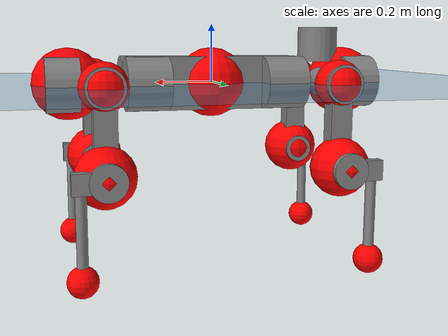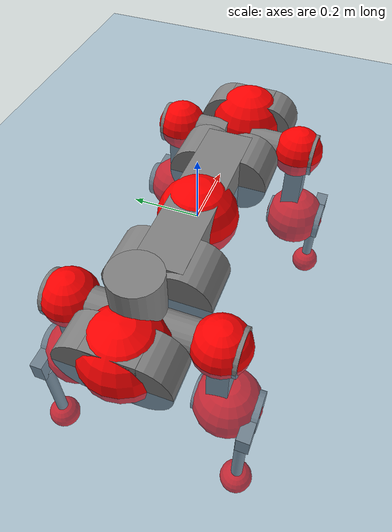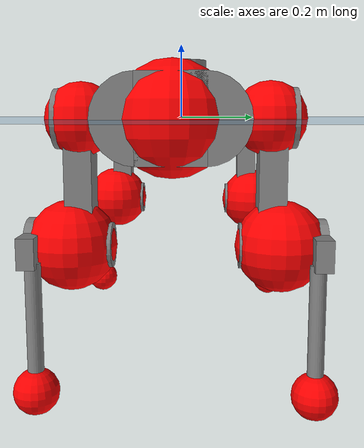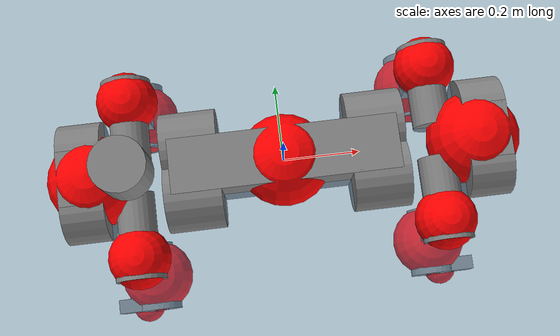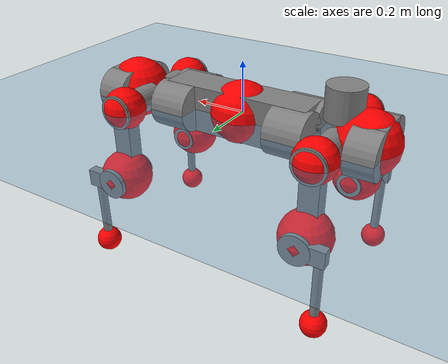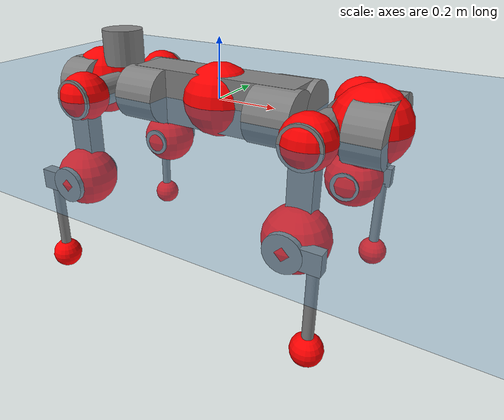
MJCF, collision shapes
<mujoco model="anymal_c">
  <compiler angle="radian" assetdir="assets" balanceinertia="true" inertiafromgeom="false"/>

  <option timestep="0.005" density="1.2" viscosity="2e-05"/>

  <size nkey="1"/>

  <visual>
    <quality shadowsize="8192"/>
    <map shadowclip="0.5"/>
  </visual>

  <default>
    <default class="/">
      <material specular="0" shininess="0.25"/>
      <geom contype="0" conaffinity="0" group="1" solref="-1000 -80"/>
      <site size="0.01 0.005 0.005" group="5"/>
      <general forcelimited="true" forcerange="-80 80" biastype="affine" gainprm="80" biasprm="0 -80 -2"/>
      <default class="anymal_c">
        <joint armature="0.01" damping="0.01" frictionloss="0.1"/>
        <default class="visual">
          <geom type="mesh" group="2"/>
          <default class="visual_zflip"/>
        </default>
        <default class="collision">
          <geom type="cylinder" group="3"/>
          <default class="foot">
            <geom size="0.03 0 0" type="sphere" condim="6" priority="1" friction="0.8 0.02 0.01" solimp="0.015 1 0.03"/>
          </default>
        </default>
      </default>
      <default class="reward_collision_sphere">
        <geom group="5" rgba="1 0 0 1"/>
      </default>
    </default>
  </default>

  <asset>
    <texture type="skybox" colorspace="auto" name="//unnamed_texture_0" builtin="gradient" rgb1="0.95 0.95 0.95" rgb2="0.95 0.95 0.95" width="100" height="600"/>
    <texture type="2d" colorspace="auto" name="texplane" builtin="checker" rgb1="0.345 0.575 0.748" rgb2="0.345 0.575 0.748" markrgb="1 1 1" width="512" height="512"/>
    <texture type="2d" colorspace="linear" name="base" file="base.png"/>
    <texture type="2d" colorspace="linear" name="top_shell" file="top_shell.png"/>
    <texture type="2d" colorspace="linear" name="bottom_shell" file="bottom_shell.png"/>
    <texture type="2d" colorspace="linear" name="remote" file="remote.png"/>
    <texture type="2d" colorspace="linear" name="hatch" file="hatch.png"/>
    <texture type="2d" colorspace="linear" name="handle" file="handle.png"/>
    <texture type="2d" colorspace="linear" name="face" file="face.png"/>
    <texture type="2d" colorspace="linear" name="battery" file="battery.png"/>
    <texture type="2d" colorspace="linear" name="lidar_cage" file="lidar_cage.png"/>
    <texture type="2d" colorspace="linear" name="depth_camera" file="depth_camera.png"/>
    <texture type="2d" colorspace="linear" name="wide_angle_camera" file="wide_angle_camera.png"/>
    <texture type="2d" colorspace="linear" name="lidar" file="lidar.png"/>
    <texture type="2d" colorspace="linear" name="drive" file="drive.png"/>
    <texture type="2d" colorspace="linear" name="hip_l" file="hip_l.png"/>
    <texture type="2d" colorspace="linear" name="shank_l" file="shank_l.png"/>
    <texture type="2d" colorspace="linear" name="foot" file="foot.png"/>
    <texture type="2d" colorspace="linear" name="thigh" file="thigh.png"/>
    <texture type="2d" colorspace="linear" name="shank_r" file="shank_r.png"/>
    <texture type="2d" colorspace="linear" name="hip_r" file="hip_r.png"/>
    <material name="MatPlane" class="/" texture="texplane" texuniform="true" texrepeat="2 2" specular="0.9" shininess="0.5"/>
    <material name="black_plastic" class="/" rgba="0.007 0.007 0.007 1"/>
    <material name="green" class="/" rgba="0.052 0.178 0.033 1"/>
    <material name="red" class="/" rgba="0.178 0.006 0.005 1"/>
    <material name="yellow" class="/" rgba="0.178 0.119 0.006 1"/>
    <material name="lwl" class="/" rgba="0.8 0.8 0.8 1"/>
    <material name="base" class="/" texture="base"/>
    <material name="top_shell" class="/" texture="top_shell"/>
    <material name="bottom_shell" class="/" texture="bottom_shell"/>
    <material name="hip_l" class="/" texture="hip_l"/>
    <material name="thigh" class="/" texture="thigh"/>
    <material name="shank_l" class="/" texture="shank_l"/>
    <material name="foot" class="/" texture="foot"/>
    <material name="hip_r" class="/" texture="hip_r"/>
    <material name="shank" class="/" texture="shank_r"/>
    <material name="hatch" class="/" texture="hatch"/>
    <material name="remote" class="/" texture="remote"/>
    <material name="handle" class="/" texture="handle"/>
    <material name="face" class="/" texture="face"/>
    <material name="depth_camera" class="/" texture="depth_camera"/>
    <material name="wide_angle_camera" class="/" texture="wide_angle_camera"/>
    <material name="battery" class="/" texture="battery"/>
    <material name="lidar_cage" class="/" texture="lidar_cage"/>
    <material name="lidar" class="/" texture="lidar"/>
    <material name="drive" class="/" texture="drive"/>
    <mesh name="base_0" class="/" file="base_0.obj"/>
    <mesh name="base_1" class="/" file="base_1.obj"/>
    <mesh name="base_2" class="/" file="base_2.obj"/>
    <mesh name="base_3" class="/" file="base_3.obj"/>
    <mesh name="base_4" class="/" file="base_4.obj"/>
    <mesh name="base_5" class="/" file="base_5.obj"/>
    <mesh name="top_shell" class="/" file="top_shell.obj"/>
    <mesh name="bottom_shell" class="/" file="bottom_shell.obj"/>
    <mesh name="remote" class="/" file="remote.obj"/>
    <mesh name="handle" class="/" file="handle.obj"/>
    <mesh name="face" class="/" file="face.obj"/>
    <mesh name="wide_angle_camera" class="/" file="wide_angle_camera.obj"/>
    <mesh name="depth_camera" class="/" file="depth_camera.obj"/>
    <mesh name="battery" class="/" file="battery.obj"/>
    <mesh name="lidar_cage" class="/" file="lidar_cage.obj"/>
    <mesh name="lidar" class="/" file="lidar.obj"/>
    <mesh name="drive" class="/" file="drive.obj"/>
    <mesh name="hip_l" class="/" file="hip_l.obj"/>
    <mesh name="thigh" class="/" file="thigh.obj"/>
    <mesh name="shank_l" class="/" file="shank_l.obj"/>
    <mesh name="foot" class="/" file="foot.obj"/>
    <mesh name="hip_r" class="/" file="hip_r.obj"/>
    <mesh name="hatch" class="/" file="hatch.obj"/>
    <mesh name="shank_r" class="/" file="shank_r.obj"/>
  </asset>

  <worldbody>
    <geom name="floor" class="/" size="100 100 0.125" type="plane" group="0" material="MatPlane"/>
    <light name="toplight_shadow" class="/" pos="0 0 5" dir="0.0990148 0.0990148 -0.990148" type="directional" ambient="0.04 0.04 0.04" diffuse="0.55 0.55 0.55" specular="0.12 0.12 0.12"/>
    <light name="toplight_fill" class="/" pos="0 0 5" dir="0.0990148 0.0990148 -0.990148" type="directional" castshadow="false" ambient="0.04 0.04 0.04" diffuse="0.3 0.3 0.3" specular="0.08 0.08 0.08"/>
    <body name="trunk" childclass="anymal_c" pos="0.00259291 -0.00022753 -0.000614397" quat="0.999999 0.000177386 -0.000804884 0.00107424">
      <inertial pos="-9.46537e-05 0.000136163 0.0493309" quat="0.501998 0.501854 0.49573 0.500392" mass="18.9972" diaginertia="1.04092 0.469472 0.196573"/>
      <joint name="//unnamed_joint_0" type="free" armature="0" damping="0" frictionloss="0"/>
      <geom name="//unnamed_geom_1" class="visual" material="green" mesh="base_0"/>
      <geom name="//unnamed_geom_2" class="visual" material="yellow" mesh="base_1"/>
      <geom name="//unnamed_geom_3" class="visual" material="red" mesh="base_2"/>
      <geom name="//unnamed_geom_4" class="visual" material="black_plastic" mesh="base_3"/>
      <geom name="//unnamed_geom_5" class="visual" material="lwl" mesh="base_4"/>
      <geom name="//unnamed_geom_6" class="visual" material="base" mesh="base_5"/>
      <geom name="trunk_1" class="collision" size="0.293462 0.0708358 0.0910746" type="box"/>
      <geom name="trunk_2" class="collision" size="0.0910746 0.0733656" pos="0.24034 0.0662977 0" quat="0.707107 0 0.707107 0"/>
      <geom name="trunk_3" class="collision" size="0.0910746 0.0733656" pos="-0.24034 0.0662977 0" quat="0.707107 0 0.707107 0"/>
      <geom name="trunk_4" class="collision" size="0.0910746 0.0733656" pos="0.24034 -0.0662977 0" quat="0.707107 0 0.707107 0"/>
      <geom name="trunk_5" class="collision" size="0.0910746 0.0733656" pos="-0.24034 -0.0662977 0" quat="0.707107 0 0.707107 0"/>
      <geom name="//unnamed_geom_12" class="visual" material="top_shell" mesh="top_shell"/>
      <geom name="//unnamed_geom_13" class="visual" material="bottom_shell" mesh="bottom_shell"/>
      <geom name="//unnamed_geom_14" class="visual" material="remote" mesh="remote"/>
      <geom name="//unnamed_geom_15" class="visual" material="handle" mesh="handle"/>
      <geom name="//unnamed_geom_16" class="visual" pos="0.458028 0 0" quat="1 0 0 0" material="face" mesh="face"/>
      <geom name="trunk_6" class="collision" size="0.0556567 0.0708358 0.0910746" pos="0.518804 0 0" type="box"/>
      <geom name="//unnamed_geom_18" class="collision" size="0.0910746 0.0556567" pos="0.518804 0.0662977 0" quat="0.707107 0 0.707107 0"/>
      <geom name="//unnamed_geom_19" class="collision" size="0.0910746 0.0556567" pos="0.518804 -0.0662977 0" quat="0.707107 0 0.707107 0"/>
      <geom name="//unnamed_geom_20" class="visual" pos="0.510124 0 -0.0278018" quat="0.965926 0 0.258819 0" material="depth_camera" mesh="depth_camera"/>
      <geom name="//unnamed_geom_21" class="visual" pos="0.566872 0 0.0147259" material="wide_angle_camera" mesh="wide_angle_camera"/>
      <geom name="//unnamed_geom_22" class="visual_zflip" pos="-0.458028 0 0" quat="0 0 0 1" material="face" mesh="face"/>
      <geom name="trunk_7" class="collision" size="0.0556567 0.0708358 0.0910746" pos="-0.518804 0 0" quat="0 0 0 1" type="box"/>
      <geom name="//unnamed_geom_24" class="collision" size="0.0910746 0.0556567" pos="-0.518804 -0.0662977 0" quat="0 -0.707107 0 0.707107"/>
      <geom name="//unnamed_geom_25" class="collision" size="0.0910746 0.0556567" pos="-0.518804 0.0662977 0" quat="0 -0.707107 0 0.707107"/>
      <geom name="//unnamed_geom_26" class="visual" pos="-0.510124 0 -0.0278018" quat="0 -0.258819 0 0.965926" material="depth_camera" mesh="depth_camera"/>
      <geom name="//unnamed_geom_27" class="visual_zflip" pos="-0.566872 0 0.0147259" quat="0 0 0 1" material="wide_angle_camera" mesh="wide_angle_camera"/>
      <geom name="//unnamed_geom_28" class="visual" material="battery" mesh="battery"/>
      <geom name="//unnamed_geom_29" class="visual" pos="0 0.070339 0.0294983" quat="0.683013 -0.183013 0.183013 0.683013" material="depth_camera" mesh="depth_camera"/>
      <geom name="//unnamed_geom_30" class="visual" pos="0 -0.070339 0.0294983" quat="0.683013 0.183013 0.183013 -0.683013" material="depth_camera" mesh="depth_camera"/>
      <geom name="//unnamed_geom_31" class="visual" pos="-0.402225 0 0.0723015" quat="1 0 0 0" material="lidar_cage" mesh="lidar_cage"/>
      <geom name="trunk_8" class="collision" size="0.0708358 0.0607164" pos="-0.402225 0 0.131323"/>
      <geom name="//unnamed_geom_33" class="visual" pos="-0.402225 -6.20358e-05 0.139881" quat="0.707107 0 0 -0.707107" material="lidar" mesh="lidar"/>
      <geom name="//unnamed_geom_34" class="visual" pos="0.331394 0.0985125 -6.31071e-10" quat="0.258819 0.965926 0 0" material="drive" mesh="drive"/>
      <geom name="//unnamed_geom_35" class="visual" pos="0.331394 -0.0985125 6.31071e-10" quat="0.258819 -0.965926 0 0" material="drive" mesh="drive"/>
      <geom name="//unnamed_geom_36" class="visual" pos="-0.331394 0.0985125 6.31071e-10" quat="0 0 0.965926 -0.258819" material="drive" mesh="drive"/>
      <geom name="//unnamed_geom_37" class="visual" pos="-0.331394 -0.0985125 -6.31071e-10" quat="0 0 -0.965926 -0.258819" material="drive" mesh="drive"/>
      <geom name="//unnamed_geom_38" class="visual" pos="0.128182 0 0.0718097" quat="1 0 0 0" material="hatch" mesh="hatch"/>
      <geom name="//unnamed_geom_39" class="reward_collision_sphere" size="0.121433"/>
      <geom name="//unnamed_geom_40" class="reward_collision_sphere" size="0.121433" pos="0.497256 0 0"/>
      <geom name="//unnamed_geom_41" class="reward_collision_sphere" size="0.121433" pos="-0.497256 0 0"/>
      <site name="imu" pos="0.274711 0.0136904 0.0590222" size="0.0101194"/>
      <camera name="track" pos="0 -1.89422 0" quat="0.707107 0.707107 0 0" mode="trackcom"/>
      <camera name="ego_camera" pos="0.497256 0 -0.0393478" quat="-0.5 -0.5 0.5 0.5"/>
      <body name="LF_HIP" pos="0.331734 0.100026 0.000122612" quat="0.258724 0.965951 -1.38715e-05 0.000112859">
        <inertial pos="0.0615762 -0.0163041 -0.0072547" quat="-0.128189 0.710464 -0.135592 0.678545" mass="2.82107" diaginertia="0.00982747 0.00374256 0.0030302"/>
        <joint name="LF_HAA" pos="0 0 0" axis="0.999886 0.00173412 0.0149986" range="-0.666108 0.501051" armature="0.00997901" damping="0.0142101" frictionloss="0.10076"/>
        <geom name="//unnamed_geom_42" class="visual" pos="0 -3.71231e-05 6.09743e-06" quat="0.258819 -0.965926 0 0" material="hip_l" mesh="hip_l"/>
        <geom name="//unnamed_geom_43" class="visual" pos="0.0661903 -0.0781376 -0.0453834" quat="0.183013 -0.683013 0.683013 0.183013" material="drive" mesh="drive"/>
        <geom name="//unnamed_geom_44" class="collision" size="0.050597 0.0708358" pos="0.0661903 -0.0113273 -0.00679241" quat="-0.353553 -0.612372 0.612372 -0.353553"/>
        <body name="LF_THIGH" pos="0.0674909 -0.0681284 -0.0399778" quat="0.182056 -0.682539 0.683637 0.183403">
          <inertial pos="0.036514 -0.0016443 -0.244379" quat="0.993185 -0.00479446 -0.080418 0.0842223" mass="3.08012" diaginertia="0.0489098 0.0221952 0.00386482"/>
          <joint name="LF_HFE" pos="0 0 0" axis="0.999999 -0.00128603 -0.00114877" range="-3.14037 3.13847" armature="0.0101234" damping="0.0113773" frictionloss="0.10331"/>
          <geom name="//unnamed_geom_45" class="visual" pos="0.00314164 4.9505e-06 0" quat="0.707107 0 0 -0.707107" material="thigh" mesh="thigh"/>
          <geom name="//unnamed_geom_46" class="collision" size="0.0657761 0.0404776" pos="0.0442005 0 0" quat="0.5 0.5 -0.5 -0.5"/>
          <geom name="//unnamed_geom_47" class="collision" size="0.0379477 0.0303582 0.143001" pos="0.0331504 0 -0.13901" quat="0.707107 0 0 -0.707107" type="box"/>
          <geom name="//unnamed_geom_48" class="visual" pos="0.110833 0 -0.280353" quat="1 0 0 0" material="drive" mesh="drive"/>
          <geom name="//unnamed_geom_49" class="collision" size="0.050597 0.0708358" pos="0.0334819 0 -0.280353" quat="0.707107 0 0.707107 0"/>
          <geom name="//unnamed_geom_50" class="reward_collision_sphere" size="0.0809552" pos="0.0276253 0 0"/>
          <body name="LF_SHANK" pos="0.110227 -0.00311153 -0.280151" quat="1 9.76391e-05 0.000467689 -0.000801021">
            <inertial pos="0.00349797 -0.0577173 -0.0774375" quat="0.992959 -0.115657 -0.00109325 -0.0255993" mass="0.608794" diaginertia="0.0169599 0.00742293 0.00105366"/>
            <joint name="LF_KFE" pos="0 0 0" axis="1 -2.85077e-05 1.43443e-05" range="-3.1945 3.14789" armature="0.0105613" damping="0" frictionloss="0.106245"/>
            <geom name="//unnamed_geom_51" class="visual" pos="0.00102442 0.00546227 0" quat="0.707107 0 0 -0.707107" material="shank_l" mesh="shank_l"/>
            <geom name="LF_kfe_act" class="collision" size="0.0607164 0.0202388" pos="0.0221003 0 0" quat="0.5 0.5 -0.5 -0.5"/>
            <geom name="//unnamed_geom_53" class="collision" size="0.0581855 0.034153 0.0192269" pos="0.0221003 -0.0544579 0" quat="0.5 0.5 -0.5 -0.5" type="box"/>
            <geom name="//unnamed_geom_54" class="visual" pos="0.0144202 -0.0815381 -0.332459" quat="0.382683 0 0 -0.92388" material="foot" mesh="foot"/>
            <geom name="LF_calf" class="collision" size="0.0177089 0.142938" pos="0.0144204 -0.0832984 -0.16623" quat="0.707107 0 0 -0.707107"/>
            <geom name="LF_foot" class="foot" size="0.0330709" pos="0.0144204 -0.0832984 -0.310326" quat="0.707107 0 0 -0.707107"/>
            <geom name="//unnamed_geom_57" class="reward_collision_sphere" size="0.101194" pos="-0.0552507 0 0"/>
            <geom name="//unnamed_geom_58" class="reward_collision_sphere" size="0.050597" pos="0.0144204 -0.0832984 -0.310326"/>
            <site name="LF_foot" class="foot" pos="0.0144204 -0.0832984 -0.310326" quat="0.707107 0 0 -0.707107" size="0.0101194"/>
          </body>
        </body>
      </body>
      <body name="RF_HIP" pos="0.330889 -0.0984546 -0.00253327" quat="0.260017 -0.965604 0.000627272 -0.000129672">
        <inertial pos="0.0637664 0.0123083 -0.00804502" quat="0.135776 0.670459 0.134681 0.716876" mass="2.84879" diaginertia="0.00922465 0.00369083 0.00291522"/>
        <joint name="RF_HAA" pos="0 0 0" axis="0.999995 -0.00280964 -0.00137867" range="-0.50332 0.724848" armature="0.00976398" damping="0.0115096" frictionloss="0.0879797"/>
        <geom name="//unnamed_geom_59" class="visual" pos="0 3.71228e-05 6.09742e-06" quat="0.258819 0.965926 0 0" material="hip_r" mesh="hip_r"/>
        <geom name="//unnamed_geom_60" class="visual" pos="0.0661903 0.0781376 -0.0453834" quat="0.183013 0.683013 0.683013 -0.183013" material="drive" mesh="drive"/>
        <geom name="//unnamed_geom_61" class="collision" size="0.050597 0.0708358" pos="0.0661903 0.0113273 -0.00679241" quat="-0.353553 0.612372 0.612372 0.353553"/>
        <body name="RF_THIGH" pos="0.0662017 0.0657858 -0.0405999" quat="0.183013 0.682964 0.683057 -0.183028">
          <inertial pos="0.0354311 -0.00241857 -0.241294" quat="0.993818 -0.00390387 -0.0751838 0.0815996" mass="3.21774" diaginertia="0.049436 0.0227333 0.00394171"/>
          <joint name="RF_HFE" pos="0 0 0" axis="1 -0.000620462 0.000225713" range="-3.12689 3.18995" armature="0.0101707" damping="0.0151007" frictionloss="0.10306"/>
          <geom name="//unnamed_geom_62" class="visual" pos="0.00314164 4.9505e-06 0" quat="0.707107 0 0 -0.707107" material="thigh" mesh="thigh"/>
          <geom name="//unnamed_geom_63" class="collision" size="0.0657761 0.0404776" pos="0.0442005 0 0" quat="0.5 0.5 0.5 0.5"/>
          <geom name="//unnamed_geom_64" class="collision" size="0.0379477 0.0303582 0.143001" pos="0.0331504 0 -0.13901" quat="0.707107 0 0 0.707107" type="box"/>
          <geom name="//unnamed_geom_65" class="visual" pos="0.110833 0 -0.280353" quat="1 0 0 0" material="drive" mesh="drive"/>
          <geom name="//unnamed_geom_66" class="collision" size="0.050597 0.0708358" pos="0.0334819 0 -0.280353" quat="0.707107 0 0.707107 0"/>
          <geom name="//unnamed_geom_67" class="reward_collision_sphere" size="0.0809552" pos="0.0276253 0 0"/>
          <body name="RF_SHANK" pos="0.110757 -0.00223032 -0.280167" quat="1 -2.95933e-05 2.05159e-05 4.66962e-07">
            <inertial pos="0.00652537 0.058398 -0.0790087" quat="0.993966 0.107433 -0.00980912 0.0198412" mass="0.605" diaginertia="0.016679 0.00704008 0.00100166"/>
            <joint name="RF_KFE" pos="0 0 0" axis="0.999962 0.0033265 0.00808131" range="-3.14204 3.17787" armature="0.0103655" damping="0.0210565" frictionloss="0.101017"/>
            <geom name="//unnamed_geom_68" class="visual" pos="0.00102442 -0.00546226 0" quat="0.707107 0 0 0.707107" material="shank" mesh="shank_r"/>
            <geom name="RF_kfe_act" class="collision" size="0.0607164 0.0202388" pos="0.0221003 0 0" quat="0.5 0.5 0.5 0.5"/>
            <geom name="//unnamed_geom_70" class="collision" size="0.0581855 0.034153 0.0192269" pos="0.0221003 0.0544579 0" quat="0.5 0.5 0.5 0.5" type="box"/>
            <geom name="//unnamed_geom_71" class="visual" pos="0.0144207 0.0815381 -0.332459" quat="0.382683 0 0 0.92388" material="foot" mesh="foot"/>
            <geom name="RF_calf" class="collision" size="0.0177089 0.142938" pos="0.0144204 0.0832984 -0.16623" quat="0.707107 0 0 0.707107"/>
            <geom name="RF_foot" class="foot" size="0.0273815" pos="0.0144204 0.0832984 -0.310326" quat="0.707107 0 0 0.707107"/>
            <geom name="//unnamed_geom_74" class="reward_collision_sphere" size="0.101194" pos="-0.0552507 0 0"/>
            <geom name="//unnamed_geom_75" class="reward_collision_sphere" size="0.050597" pos="0.0144204 0.0832984 -0.310326"/>
            <site name="RF_foot" class="foot" pos="0.0144204 0.0832984 -0.310326" quat="0.707107 0 0 0.707107" size="0.0101194"/>
          </body>
        </body>
      </body>
      <body name="LH_HIP" pos="-0.330698 0.0991052 -0.000965312" quat="6.72668e-05 0.000142483 0.965902 -0.258908">
        <inertial pos="0.0626266 0.0169328 -0.0105125" quat="0.140073 0.684611 0.13496 0.702477" mass="2.93868" diaginertia="0.00951634 0.00367636 0.00309111"/>
        <joint name="LH_HAA" pos="0 0 0" axis="1 -0.0003428 0.000286454" range="-0.477451 0.695515" armature="0.00891386" damping="0.0142274" frictionloss="0.114852"/>
        <geom name="//unnamed_geom_76" class="visual" pos="0 3.71228e-05 6.09742e-06" quat="-0.258819 -0.965926 0 0" material="hip_r" mesh="hip_r"/>
        <geom name="//unnamed_geom_77" class="visual" pos="0.0661903 0.0781376 -0.0453834" quat="0.183013 0.683013 0.683013 -0.183013" material="drive" mesh="drive"/>
        <geom name="//unnamed_geom_78" class="collision" size="0.050597 0.0708358" pos="0.0661903 0.0113273 -0.00679241" quat="-0.353553 0.612372 0.612372 0.353553"/>
        <body name="LH_THIGH" pos="0.0656418 0.0657789 -0.0396077" quat="0.183186 0.683164 0.68286 -0.182846">
          <inertial pos="0.0341223 -0.000234428 -0.242428" quat="0.992603 -0.00615551 -0.0814696 0.0897974" mass="3.2505" diaginertia="0.0495864 0.0222511 0.00389701"/>
          <joint name="LH_HFE" pos="0 0 0" axis="0.999982 0.000340656 0.00595701" stiffness="0.00564668" range="-3.13274 3.14351" armature="0.0112428" damping="0.00212486" frictionloss="0.100583"/>
          <geom name="//unnamed_geom_79" class="visual" pos="0.00314164 4.9505e-06 0" quat="0.707107 0 0 -0.707107" material="thigh" mesh="thigh"/>
          <geom name="//unnamed_geom_80" class="collision" size="0.0657761 0.0404776" pos="0.0442005 0 0" quat="0.5 0.5 -0.5 -0.5"/>
          <geom name="//unnamed_geom_81" class="collision" size="0.0379477 0.0303582 0.143001" pos="0.0331504 0 -0.13901" quat="0.707107 0 0 -0.707107" type="box"/>
          <geom name="//unnamed_geom_82" class="visual" pos="0.110833 0 -0.280353" quat="1 0 0 0" material="drive" mesh="drive"/>
          <geom name="//unnamed_geom_83" class="collision" size="0.050597 0.0708358" pos="0.0334819 0 -0.280353" quat="0.707107 0 0.707107 0"/>
          <geom name="//unnamed_geom_84" class="reward_collision_sphere" size="0.0809552" pos="0.0276253 0 0"/>
          <body name="LH_SHANK" pos="0.111317 -0.000712615 -0.282686" quat="1 -0.000266608 -0.000459283 -1.71515e-06">
            <inertial pos="0.00645386 0.0605371 -0.0790669" quat="0.993393 0.112445 0.00172557 0.0228655" mass="0.606465" diaginertia="0.0163951 0.0070309 0.000990596"/>
            <joint name="LH_KFE" pos="0 0 0" axis="0.999958 -0.00749296 0.00520333" range="-3.14549 3.14808" armature="0.0107264" damping="0" frictionloss="0.11475"/>
            <geom name="//unnamed_geom_85" class="visual" pos="0.00102442 -0.00546226 0" quat="-0.707107 0 0 -0.707107" material="shank" mesh="shank_r"/>
            <geom name="LH_kfe_act" class="collision" size="0.0607164 0.0202388" pos="0.0221003 0 0" quat="0.5 0.5 -0.5 -0.5"/>
            <geom name="//unnamed_geom_87" class="collision" size="0.0581855 0.034153 0.0192269" pos="0.0221003 0.0544579 0" quat="0.5 0.5 -0.5 -0.5" type="box"/>
            <geom name="//unnamed_geom_88" class="visual" pos="0.0144207 0.0815381 -0.332459" quat="-0.382683 0 0 -0.92388" material="foot" mesh="foot"/>
            <geom name="LH_calf" class="collision" size="0.0177089 0.142938" pos="0.0144204 0.0832984 -0.16623" quat="0.707107 0 0 -0.707107"/>
            <geom name="LH_foot" class="foot" size="0.0314302" pos="0.0144204 0.0832984 -0.310326" quat="0.707107 0 0 -0.707107"/>
            <geom name="//unnamed_geom_91" class="reward_collision_sphere" size="0.101194" pos="-0.0552507 0 0"/>
            <geom name="//unnamed_geom_92" class="reward_collision_sphere" size="0.050597" pos="0.0144204 0.0832984 -0.310326"/>
            <site name="LH_foot" class="foot" pos="0.0144204 0.0832984 -0.310326" quat="0.707107 0 0 -0.707107" size="0.0101194"/>
          </body>
        </body>
      </body>
      <body name="RH_HIP" pos="-0.33192 -0.100078 -0.00123568" quat="0.000244077 0.000339213 -0.965598 -0.26004">
        <inertial pos="0.065287 -0.0123646 -0.0110643" quat="-0.12662 0.712312 -0.144215 0.675116" mass="2.87474" diaginertia="0.00959793 0.00371714 0.00302819"/>
        <joint name="RH_HAA" pos="0 0 0" axis="0.9999 0.0129979 0.00551001" range="-0.731938 0.474026" armature="0.00975449" damping="0.0138626" frictionloss="0.0960102"/>
        <geom name="//unnamed_geom_93" class="visual" pos="0 -3.71231e-05 6.09743e-06" quat="-0.258819 0.965926 0 0" material="hip_l" mesh="hip_l"/>
        <geom name="//unnamed_geom_94" class="visual" pos="0.0661903 -0.0781376 -0.0453834" quat="-0.183013 0.683013 -0.683013 -0.183013" material="drive" mesh="drive"/>
        <geom name="//unnamed_geom_95" class="collision" size="0.050597 0.0708358" pos="0.0661903 -0.0113273 -0.00679241" quat="0.353553 0.612372 -0.612372 0.353553"/>
        <body name="RH_THIGH" pos="0.0670608 -0.070853 -0.0441365" quat="-0.183012 0.68293 -0.683117 -0.182934">
          <inertial pos="0.0346946 -0.000343047 -0.241405" quat="0.993155 -0.00517174 -0.0807502 0.0842338" mass="3.08123" diaginertia="0.0504826 0.0233315 0.00384532"/>
          <joint name="RH_HFE" pos="0 0 0" axis="0.999997 0.000197257 0.0024424" range="-3.13696 3.19797" armature="0.0102274" damping="0.00888249" frictionloss="0.0959803"/>
          <geom name="//unnamed_geom_96" class="visual" pos="0.00314164 4.9505e-06 0" quat="0.707107 0 0 -0.707107" material="thigh" mesh="thigh"/>
          <geom name="//unnamed_geom_97" class="collision" size="0.0657761 0.0404776" pos="0.0442005 0 0" quat="0.5 0.5 0.5 0.5"/>
          <geom name="//unnamed_geom_98" class="collision" size="0.0379477 0.0303582 0.143001" pos="0.0331504 0 -0.13901" quat="0.707107 0 0 0.707107" type="box"/>
          <geom name="//unnamed_geom_99" class="visual" pos="0.110833 0 -0.280353" quat="1 0 0 0" material="drive" mesh="drive"/>
          <geom name="//unnamed_geom_100" class="collision" size="0.050597 0.0708358" pos="0.0334819 0 -0.280353" quat="0.707107 0 0.707107 0"/>
          <geom name="//unnamed_geom_101" class="reward_collision_sphere" size="0.0809552" pos="0.0276253 0 0"/>
          <body name="RH_SHANK" pos="0.111732 -4.71547e-05 -0.278665" quat="1 -2.90697e-05 0.000133876 0.000239897">
            <inertial pos="0.00395994 -0.0586609 -0.0798727" quat="0.992816 -0.117848 0.00132046 -0.0206595" mass="0.608939" diaginertia="0.01673 0.00709206 0.00106485"/>
            <joint name="RH_KFE" pos="0 0 0" axis="0.999885 0.00642461 0.0137595" range="-3.11229 3.13678" armature="0.0105953" damping="0.0212789" frictionloss="0.105881"/>
            <geom name="//unnamed_geom_102" class="visual" pos="0.00102442 0.00546227 0" quat="0.707107 0 0 -0.707107" material="shank_l" mesh="shank_l"/>
            <geom name="RH_kfe_act" class="collision" size="0.0607164 0.0202388" pos="0.0221003 0 0" quat="0.5 0.5 0.5 0.5"/>
            <geom name="//unnamed_geom_104" class="collision" size="0.0581855 0.034153 0.0192269" pos="0.0221003 -0.0544579 0" quat="0.5 0.5 0.5 0.5" type="box"/>
            <geom name="//unnamed_geom_105" class="visual" pos="0.0144202 -0.0815381 -0.332459" quat="0.382683 0 0 -0.92388" material="foot" mesh="foot"/>
            <geom name="RH_calf" class="collision" size="0.0177089 0.142938" pos="0.0144204 -0.0832984 -0.16623" quat="0.707107 0 0 0.707107"/>
            <geom name="RH_foot" class="foot" size="0.0273877" pos="0.0144204 -0.0832984 -0.310326" quat="0.707107 0 0 0.707107"/>
            <geom name="//unnamed_geom_108" class="reward_collision_sphere" size="0.101194" pos="-0.0552507 0 0"/>
            <geom name="//unnamed_geom_109" class="reward_collision_sphere" size="0.050597" pos="0.0144204 -0.0832984 -0.310326"/>
            <site name="RH_foot" class="foot" pos="0.0144204 -0.0832984 -0.310326" quat="0.707107 0 0 0.707107" size="0.0101194"/>
          </body>
        </body>
      </body>
    </body>
  </worldbody>

  <contact>
    <pair class="/" geom1="floor" geom2="LF_foot" name="//unnamed_contact_0"/>
    <pair class="/" geom1="floor" geom2="RF_foot" name="//unnamed_contact_1"/>
    <pair class="/" geom1="floor" geom2="LH_foot" name="//unnamed_contact_2"/>
    <pair class="/" geom1="floor" geom2="RH_foot" name="//unnamed_contact_3"/>
  </contact>

  <actuator>
    <general name="LF_HAA" class="/" joint="LF_HAA" forcerange="-82.0676 82.0676" gainprm="81.8607" biasprm="0 -81.8607 -1.97317"/>
    <general name="LF_HFE" class="/" joint="LF_HFE" forcerange="-77.8975 77.8975" gainprm="81.8607" biasprm="0 -81.8607 -1.97317"/>
    <general name="LF_KFE" class="/" joint="LF_KFE" forcerange="-81.4238 81.4238" gainprm="81.8607" biasprm="0 -81.8607 -1.97317"/>
    <general name="RF_HAA" class="/" joint="RF_HAA" forcerange="-80.6392 80.6392" gainprm="81.8607" biasprm="0 -81.8607 -1.97317"/>
    <general name="RF_HFE" class="/" joint="RF_HFE" forcerange="-86.8467 86.8467" gainprm="81.8607" biasprm="0 -81.8607 -1.97317"/>
    <general name="RF_KFE" class="/" joint="RF_KFE" forcerange="-81.8076 81.8076" gainprm="81.8607" biasprm="0 -81.8607 -1.97317"/>
    <general name="LH_HAA" class="/" joint="LH_HAA" forcerange="-89.555 89.555" gainprm="81.8607" biasprm="0 -81.8607 -1.97317"/>
    <general name="LH_HFE" class="/" joint="LH_HFE" forcerange="-79.8565 79.8565" gainprm="81.8607" biasprm="0 -81.8607 -1.97317"/>
    <general name="LH_KFE" class="/" joint="LH_KFE" forcerange="-73.5572 73.5572" gainprm="81.8607" biasprm="0 -81.8607 -1.97317"/>
    <general name="RH_HAA" class="/" joint="RH_HAA" forcerange="-76.3113 76.3113" gainprm="81.8607" biasprm="0 -81.8607 -1.97317"/>
    <general name="RH_HFE" class="/" joint="RH_HFE" forcerange="-89.6504 89.6504" gainprm="81.8607" biasprm="0 -81.8607 -1.97317"/>
    <general name="RH_KFE" class="/" joint="RH_KFE" forcerange="-79.0105 79.0105" gainprm="81.8607" biasprm="0 -81.8607 -1.97317"/>
  </actuator>

  <sensor>
    <gyro site="imu" name="imu_angular_velocity"/>
    <velocimeter site="imu" name="imu_linear_velocity"/>
    <framelinvel objtype="site" objname="LF_foot" name="LF_foot_global_linear_velocity"/>
    <framelinvel objtype="site" objname="RF_foot" name="RF_foot_global_linear_velocity"/>
    <framelinvel objtype="site" objname="LH_foot" name="LH_foot_global_linear_velocity"/>
    <framelinvel objtype="site" objname="RH_foot" name="RH_foot_global_linear_velocity"/>
  </sensor>

  <keyframe>
    <key name="home" qpos="0 0 0.55 1 0 0 0 0 0.4 -0.8 0 -0.4 0.8 0 -0.4 0.8 0 0.4 -0.8"/>
  </keyframe>
</mujoco>
